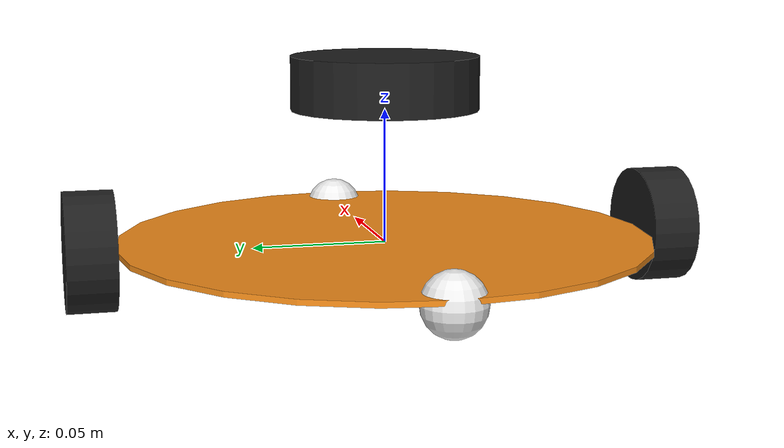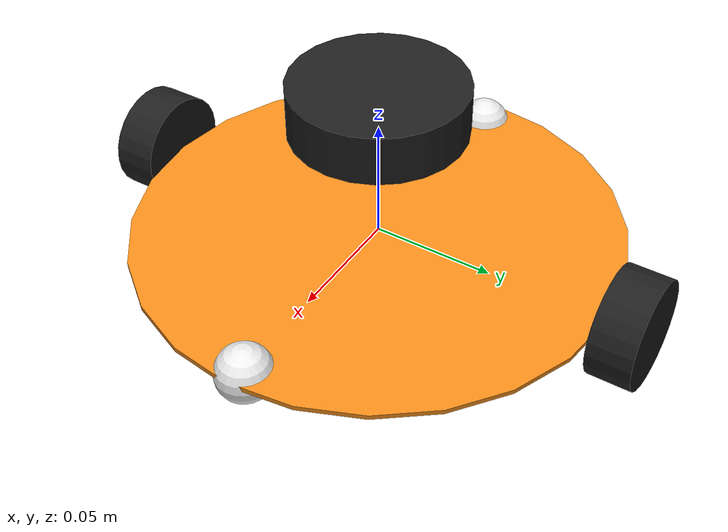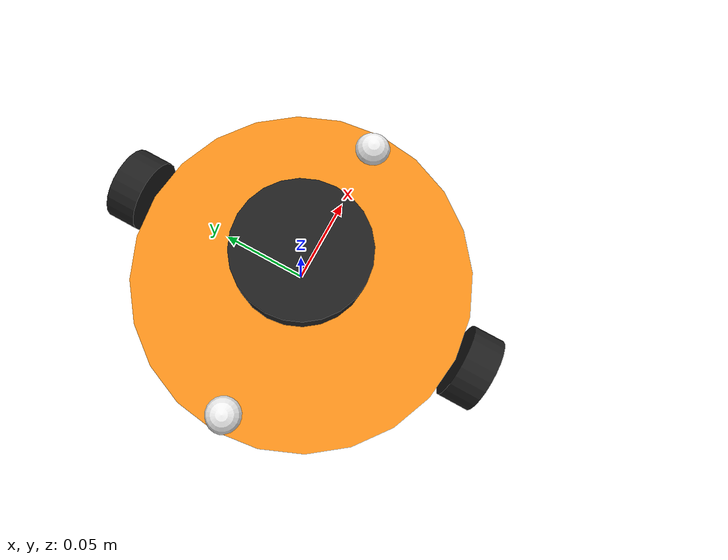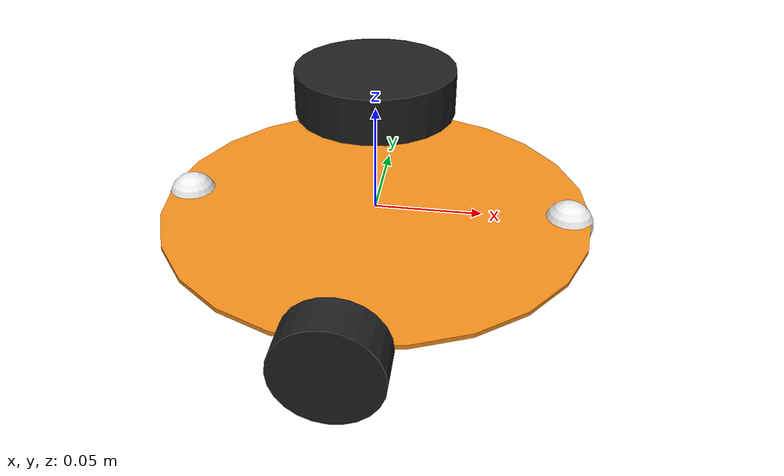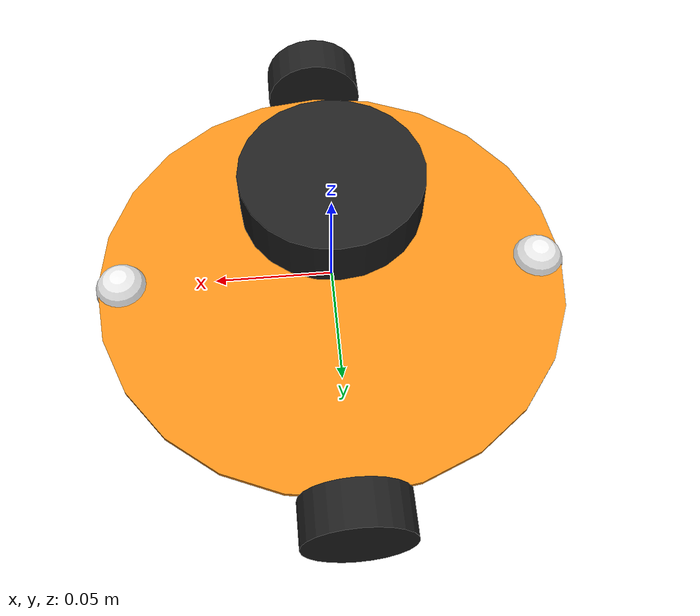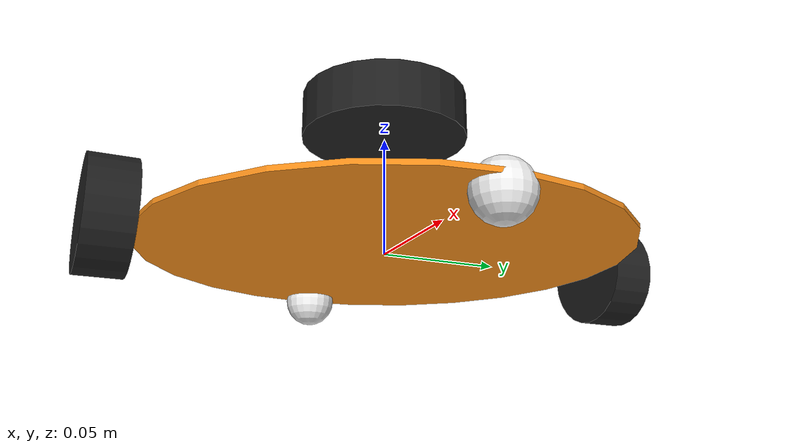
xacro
<?xml version="1.0"?>
<!-- Basic differential drive mobile base -->
<robot xmlns:xacro="http://www.ros.org/wiki/xacro" name="diffdrive_robot">
  <xacro:arg name="prefix" default="" />

  <xacro:include filename="$(find diffdrive_arduino)/urdf/diffbot_description.urdf.xacro" />

  <!-- Import Rviz colors -->
  <xacro:include filename="$(find diffdrive_arduino)/urdf/diffbot.materials.xacro" />

  <!-- Import diffbot ros2_control description -->
  <xacro:include filename="$(find diffdrive_arduino)/ros2_control/diffbot.ros2_control.xacro" />

  <xacro:diffbot prefix="$(arg prefix)" />

  <xacro:diffbot_ros2_control
    name="DiffBot" prefix="$(arg prefix)" />

</robot>

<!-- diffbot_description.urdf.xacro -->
<robot xmlns:xacro="http://www.ros.org/wiki/xacro">

  <xacro:macro name="diffbot" params="prefix">

  <!-- Constants for robot dimensions -->
  <xacro:property name="PI" value="3.1415926535897931"/>
  <xacro:property name="base_mass" value="0.3" /> <!-- arbitrary value for base mass -->
  <xacro:property name="base_width" value="0.60" />
  <xacro:property name="base_height" value="0.002" />
  <xacro:property name="base_length" value="0.002" />
  <xacro:property name="base_radius" value="0.1" />
  <xacro:property name="wheel_mass" value="0.3" /> <!-- arbitrary value for wheel mass -->
  <xacro:property name="wheel_len" value="0.018" />
  <xacro:property name="wheel_radius" value="0.022" />
  <xacro:property name="caster_wheel_mass" value="0.1" /> <!-- arbitrary value for caster wheel mass -->
  <xacro:property name="caster_wheel_radius" value="0.0114" />
  <xacro:property name="z_offset" value="${base_height}" /> <!-- Space btw top of beam and the each joint -->

  <!-- Base Link -->
  <link name="${prefix}base_link">
    <collision>
      <origin xyz="0 0 0" rpy="0 0 1.57"/>
      <geometry>
        <cylinder length="${base_height}" radius="${base_radius}"/>
      </geometry>
    </collision>

    <visual>
      <origin xyz="0 0 ${base_height/2}" rpy="0 0 0"/>
      <geometry>
        <cylinder length="${base_height}" radius="${base_radius}"/>
      </geometry>
      <material name="orange"/>
    </visual>

    </link>

    <joint name="${prefix}left_wheel_joint" type="continuous">
      <parent link="${prefix}base_link"/>
      <child link="${prefix}left_wheel"/>
      <origin xyz="0 ${base_radius+(wheel_len/2)} ${z_offset}" rpy="0 0 0"/>
      <axis xyz="0 1 0"/>
      <dynamics damping="0.2"/>
    </joint>

    <!-- left wheel Link -->
    <link name="${prefix}left_wheel">
      <collision>
        <origin xyz="0 0 0" rpy="${PI/2} 0 0"/>
        <geometry>
          <cylinder length="${wheel_len}" radius="${wheel_radius}"/>
        </geometry>
      </collision>

      <visual>
        <origin xyz="0 0 0" rpy="${PI/2} 0 0"/>
        <geometry>
          <cylinder length="${wheel_len}" radius="${wheel_radius}"/>
        </geometry>
        <material name="black"/>
      </visual>

      <inertial>
        <origin xyz="0 0 0" rpy="${PI/2} 0 0"/>
        <mass value="${wheel_mass}"/>
        <inertia
          ixx="${wheel_mass / 12.0 * (3*wheel_radius + wheel_len*wheel_len)}" ixy="0.0" ixz="0.0"
          iyy="${wheel_mass / 12.0 * wheel_radius*wheel_radius}" iyz="0.0"
          izz="${wheel_mass / 12.0 * wheel_radius*wheel_radius}"/>
        </inertial>
      </link>

    <joint name="${prefix}right_wheel_joint" type="continuous">
      <parent link="${prefix}base_link"/>
      <child link="${prefix}right_wheel"/>
      <origin xyz="0 -${base_radius+(wheel_len/2)} ${z_offset}" rpy="0 0 0"/>
      <axis xyz="0 1 0"/>
      <dynamics damping="0.2"/>
    </joint>

    <!-- right wheel Link -->
    <link name="${prefix}right_wheel">
      <collision>
        <origin xyz="0 0 0" rpy="${PI/2} 0 0"/>
        <geometry>
          <cylinder length="${wheel_len}" radius="${wheel_radius}"/>
        </geometry>
      </collision>

      <visual>
        <origin xyz="0 0 0" rpy="${PI/2} 0 0"/>
        <geometry>
          <cylinder length="${wheel_len}" radius="${wheel_radius}"/>
        </geometry>
        <material name="black"/>
      </visual>

      <inertial>
        <origin xyz="0 0 0" rpy="${PI/2} 0 0"/>
        <mass value="${wheel_mass}"/>
        <inertia
          ixx="${wheel_mass / 12.0 * (3*wheel_radius + wheel_len*wheel_len)}" ixy="0.0" ixz="0.0"
          iyy="${wheel_mass / 12.0 * wheel_radius*wheel_radius}" iyz="0.0"
          izz="${wheel_mass / 12.0 * wheel_radius*wheel_radius}"/>
        </inertial>
      </link>

    <joint name="${prefix}caster_frontal_wheel_joint" type="fixed">
      <parent link="${prefix}base_link"/>
      <child link="${prefix}caster_frontal_wheel"/>
      <origin xyz="${base_radius-0.01} 0 -${base_height}" rpy="0 0 0"/>
    </joint>

    <!-- caster frontal wheel Link -->
    <link name="${prefix}caster_frontal_wheel">
      <collision>
        <origin xyz="0 0 0" rpy="0 0 0"/>
        <geometry>
          <sphere radius="${caster_wheel_radius}"/>
        </geometry>
      </collision>

      <visual>
        <origin xyz="0 0 0" rpy="0 0 0"/>
        <geometry>
          <sphere radius="${caster_wheel_radius}"/>
        </geometry>
        <material name="white"/>
      </visual>

      <inertial>
        <origin xyz="0 0 0" rpy="0 0 0"/>
        <mass value="${caster_wheel_mass}"/>
        <inertia
          ixx="${caster_wheel_mass * 0.4 * (caster_wheel_radius * caster_wheel_radius)}" ixy="0.0" ixz="0.0"
          iyy="${caster_wheel_mass * 0.4 * (caster_wheel_radius * caster_wheel_radius)}" iyz="0.0"
          izz="${caster_wheel_mass * 0.4 * (caster_wheel_radius * caster_wheel_radius)}"/>
        </inertial>
      </link>

    <joint name="${prefix}caster_rear_wheel_joint" type="fixed">
      <parent link="${prefix}base_link"/>
      <child link="${prefix}caster_rear_wheel"/>
      <origin xyz="-${base_radius-0.01} 0 -${base_height}" rpy="0 0 0"/>
    </joint>

    <!-- caster rear wheel Link -->
    <link name="${prefix}caster_rear_wheel">
      <collision>
        <origin xyz="0 0 0" rpy="0 0 0"/>
        <geometry>
          <sphere radius="${caster_wheel_radius}"/>
        </geometry>
      </collision>

      <visual>
        <origin xyz="0 0 0" rpy="0 0 0"/>
        <geometry>
          <sphere radius="${caster_wheel_radius}"/>
        </geometry>
        <material name="white"/>
      </visual>

      <inertial>
        <origin xyz="0 0 0" rpy="0 0 0"/>
        <mass value="${caster_wheel_mass}"/>
        <inertia
          ixx="${caster_wheel_mass * 0.4 * (caster_wheel_radius * caster_wheel_radius)}" ixy="0.0" ixz="0.0"
          iyy="${caster_wheel_mass * 0.4 * (caster_wheel_radius * caster_wheel_radius)}" iyz="0.0"
          izz="${caster_wheel_mass * 0.4 * (caster_wheel_radius * caster_wheel_radius)}"/>
        </inertial>
      </link>

    <joint name="base_footprint_joint" type="fixed">
        <parent link="base_link"/>
        <child link="base_footprint"/>
        <origin xyz="0 0 0" rpy="0 0 0"/>
    </joint>

    <link name="base_footprint">
    </link>

    <joint name="laser_joint" type="fixed">
        <parent link="base_link"/>
        <child link="laser"/>
        <origin xyz="0 0 0.06" rpy = "0 0 0"/>
    </joint>

    <link name="laser">
        <visual>
        <origin xyz="0 0 0" rpy = "0 0 0"/>
            <geometry>
              <cylinder radius="0.035" length="0.02"/>
            </geometry>
            <material name="black"/>
        </visual>

        <collision>
          <origin xyz="0 0 0" rpy = "0 0 0"/>
            <geometry>
              <cylinder radius="0.035" length="0.02"/>
            </geometry>
        </collision>
    </link>

  </xacro:macro>

</robot>
